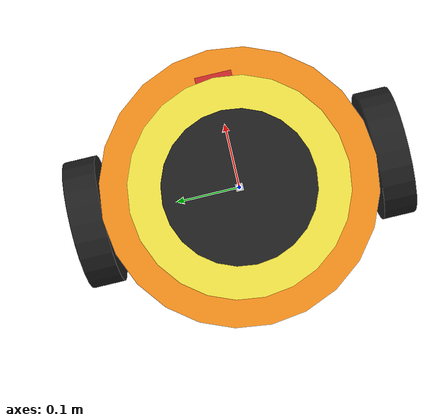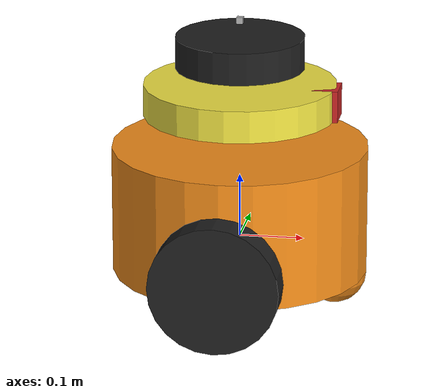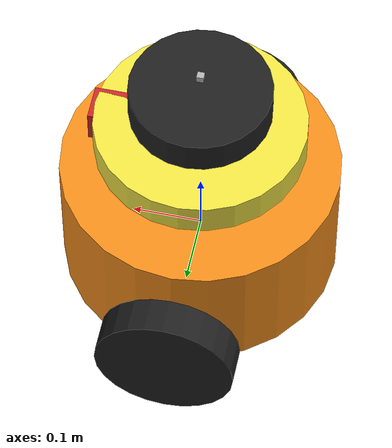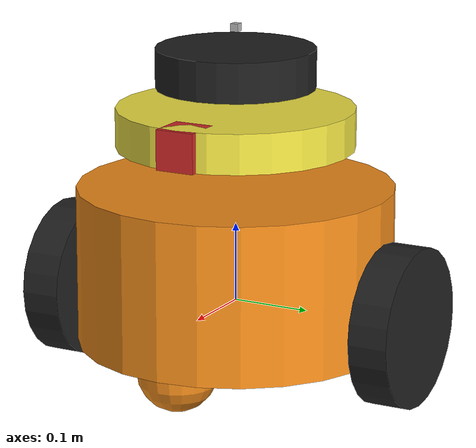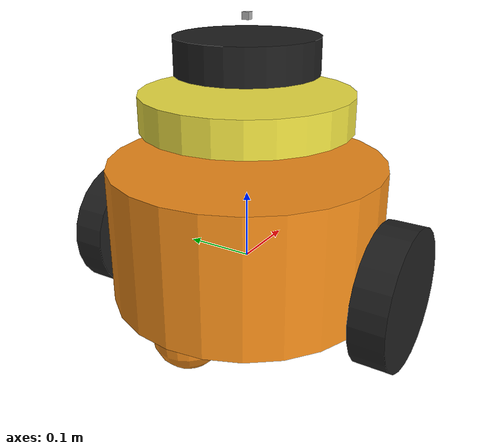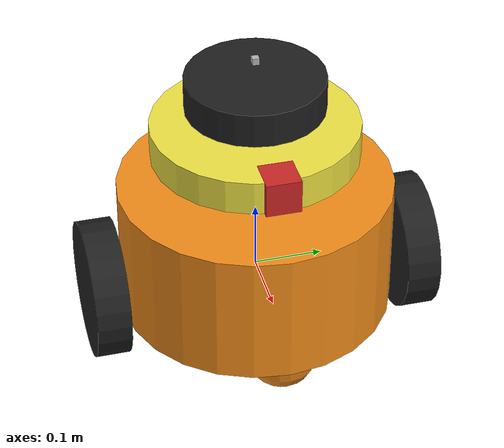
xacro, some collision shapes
<?xml version='1.0'?>

<robot name="my_robot" xmlns:xacro="http://www.ros.org/wiki/xacro">

<xacro:include filename="$(find my_robot)/urdf/my_robot.gazebo" />

  <link name="robot_footprint"></link>
   <!-- Wheels -->
  <link name="left_wheel">
  <inertial>
      <mass value="5.0"/>
      <origin xyz="0.0 0 0" rpy=" 0 0 0"/>
      <inertia
	  ixx="0.1" ixy="0" ixz="0"
	  iyy="0.1" iyz="0"
	  izz="0.1"
      />
    </inertial>
	<collision name="collision">
  <origin xyz="0 0 0" rpy=" 0 1.5707 1.5707"/>
	  <geometry>
	    <cylinder radius="0.1"  length="0.05" />
	  </geometry>
	</collision>
	<visual>
  <origin xyz="0 0 0" rpy=" 0 1.5707 1.5707"/>
	  <geometry>
	  <cylinder radius="0.1"  length="0.05" />
	  </geometry>
	</visual>
  </link>

  <joint type="continuous" name="left_wheel_hinge">
    <origin xyz="0 0.230 0" rpy="0 0 0"/>
    <child link="left_wheel"/>
    <parent link="chassis"/>
    <axis xyz="0 1 0" rpy="0 0 0"/>
    <limit effort="10000" velocity="1000"/>
    <dynamics damping="1.0" friction="1.0"/>
  </joint>

    <link name="right_wheel">
      <inertial>
      <mass value="5.0"/>
      <origin xyz="0.0 0 0" rpy=" 0 0 0"/>
      <inertia
	  ixx="0.1" ixy="0" ixz="0"
	  iyy="0.1" iyz="0"
	  izz="0.1"
      />
    </inertial>
	<collision name="collision">
	  <origin xyz="0 0 0" rpy=" 0 1.5707 1.5707"/>
	  <geometry>
	    <cylinder radius="0.1"  length="0.05" />
	  </geometry>
	</collision>
	<visual>
	  <origin xyz="0 0 0" rpy=" 0 1.5707 1.5707"/>
	  <geometry>
	  <cylinder radius="0.1"  length="0.05" />
	  </geometry>
	</visual>
    </link>

  <joint type="continuous" name="right_wheel_hinge">
    <origin xyz="0 -0.230 0" rpy="0 0 0"/>
    <child link="right_wheel"/>
    <parent link="chassis"/>
    <axis xyz="0 1 0" rpy="0 0 0"/>
    <limit effort="10000" velocity="1000"/>
    <dynamics damping="1.0" friction="1.0"/>
  </joint>

   <!-- Camera platform -->
   <link name="camera_platform">
       <pose>0 0 0 0 0 0</pose>
    <inertial>
      <mass value="1.0"/>
      <origin xyz="0.0 0 0" rpy=" 0 0 0"/>
      <inertia
        ixx="0.1" ixy="0" ixz="0"
        iyy="0.1" iyz="0"
        izz="0.1"
      />
    </inertial>

    <collision name='collision'>
      <origin xyz="0 0 0" rpy=" 0 0 0"/>
      <geometry>
      <cylinder length="0.05" radius="0.15"/>
      </geometry>
    </collision>
    <visual>
      <origin xyz="0 0 0" rpy=" 0 0 0"/>
      <geometry>

      <cylinder length="0.05" radius="0.15"/>
      </geometry>
    </visual>
   </link>

    <joint type="continuous" name="camera_platform_joint">
    <dynamics friction='0.05'/>
    <origin xyz="0 0 0.225" rpy="0 0 0"/>
      <limit effort="30" velocity="1.0"/>
    <child link="camera_platform"/>
    <parent link="chassis"/>
    <axis xyz="0 0 1" rpy="0 0 0"/>
  </joint>

  <transmission name="camera_platformtransmission">
    <type>transmission_interface/SimpleTransmission</type>
    <joint name="camera_platform_joint">
      <hardwareInterface>hardware_interface/EffortJointInterface</hardwareInterface>
    </joint>
    <actuator name="camera_platform_joint">
      <hardwareInterface>EffortJointInterface</hardwareInterface>
      <mechanicalReduction>1</mechanicalReduction>
    </actuator>
  </transmission>

   <!-- Camera -->

  <link name="camera">
      <inertial>
      <mass value="0.1"/>
      <origin xyz="0.0 0 0" rpy=" 0 0 0"/>
      <inertia  ixx="1e-6" ixy="0" ixz="0" iyy="1e-6" iyz="0" izz="1e-6"/>
      <box_inertia m="0.1" x="0.05" y="0.05" z="0.05"/>
     </inertial>
	<collision name="collision">
	  <origin xyz="0 0 0" rpy=" 0 0 0"/>
	  <geometry>
		<box size="0.05 0.05 0.05"/>
	  </geometry>
	</collision>
	<visual>
	  <origin xyz="0 0 0" rpy=" 0 0 0"/>
	  <geometry>
		<box size="0.05 0.05 0.05"/>
	  </geometry>

	</visual>
  </link>

  <link name="camera_link_optical">
  </link>

  <joint type="fixed" name="camera_joint">
    <origin xyz="0.13 0 0" rpy="0 0 0"/>
    <child link="camera"/>
    <parent link="camera_platform"/>
    <axis xyz="0 0 0" rpy="0 0 0"/>
  </joint>

   <joint name="camera_optical_joint" type="fixed">
    <origin xyz="0 0 0" rpy="-1.5707 0 -1.5707"/>
    <parent link="camera"/>
    <child link="camera_link_optical"/>
  </joint>

   <!-- Lidar platform -->

  <link name="lidar_platform">
    <pose>0 0 0 0 0 0</pose>
    <inertial>
      <mass value="1.0"/>
      <origin xyz="0.0 0 0" rpy=" 0 0 0"/>
      <inertia
	  ixx="0.1" ixy="0" ixz="0"
	  iyy="0.1" iyz="0"
	  izz="0.1"
      />
    </inertial>

    <collision name='collision'>
      <origin xyz="0 0 0" rpy=" 0 0 0"/>
      <geometry>
      <cylinder length="0.05" radius="0.1"/>
      </geometry>
    </collision>

    <visual>
      <origin xyz="0 0 0" rpy=" 0 0 0"/>
      <geometry>

      <cylinder length="0.05" radius="0.1"/>
      </geometry>
    </visual>

  </link>

    <joint type="fixed" name="lidar_platform_join">
    <origin xyz="0 0 0.3" rpy="0 0 0"/>
    <child link="lidar_platform"/>
    <parent link="chassis"/>
    <axis xyz="0 1 0" rpy="0 0 0"/>
  </joint>

 <!-- Lidar -->

    <link name="hokuyo">
      <inertial>
      <mass value="1e-5"/>
      <origin xyz="0.0 0 0" rpy=" 0 0 0"/>
      <inertia  ixx="1e-6" ixy="0" ixz="0" iyy="1e-6" iyz="0" izz="1e-6"/>
      <box_inertia m="0.1" x="0.05" y="0.05" z="0.05"/>
     </inertial>
	<collision name="collision">
	  <origin xyz="0 0 0" rpy=" 0 0 0"/>
	  <geometry>
		<box size="0.01 0.01 0.01"/>
	  </geometry>
	</collision>
	<visual name="visual">
	  <geometry>
	    <mesh filename="package://my_robot/meshes/hokuyo.dae">
	    </mesh>
	    </geometry>
	  </visual>
    </link>

  <joint type="fixed" name="hokuyo_joint">
    <origin xyz="0 0 0.05" rpy="0 0 0"/>
    <child link="hokuyo"/>
    <parent link="lidar_platform"/>
    <axis xyz="0 1 0" rpy="0 0 0"/>
  </joint>

  <joint name="robot_footprint_joint" type="fixed">
    <origin xyz="0 0 0" rpy="0 0 0" />
    <parent link="robot_footprint"/>
    <child link="chassis" />
  </joint>

<!-- chassis -->

  <link name='chassis'>
    <pose>0 0 0.1 0 0 0</pose>

    <inertial>
      <mass value="15.0"/>
      <origin xyz="0.0 0 0" rpy=" 0 0 0"/>
      <inertia
	  ixx="0.1" ixy="0" ixz="0"
	  iyy="0.1" iyz="0"
	  izz="0.1"
      />
    </inertial>

    <collision name='collision'>
      <origin xyz="0 0 0" rpy=" 0 0 0"/>
      <geometry>
      <cylinder length="0.1" radius="0.2"/>
      </geometry>
    </collision>

    <visual>
      <origin xyz="0 0 0.05" rpy=" 0 0 0"/>
      <geometry>

      <cylinder length="0.2" radius="0.2"/>
      </geometry>
    </visual>

    <collision name='back_caster_collision'>
      <origin xyz="-0.15 0 -0.05" rpy=" 0 0 0"/>
      <geometry>
	<sphere radius="0.0499"/>
      </geometry>
    </collision>

    <visual name='back_caster_visual'>
      <origin xyz="-0.15 0 -0.05" rpy=" 0 0 0"/>
      <geometry>
	<sphere radius="0.05"/>
      </geometry>
    </visual>

    <collision name='front_caster_collision'>
      <origin xyz="0.15 0 -0.05" rpy=" 0 0 0"/>
      <geometry>
	<sphere radius="0.0499"/>
      </geometry>
    </collision>

    <visual name='front_caster_visual'>
      <origin xyz="0.15 0 -0.05" rpy=" 0 0 0"/>
      <geometry>
	<sphere radius="0.05"/>
      </geometry>
    </visual>

  </link>

</robot>
